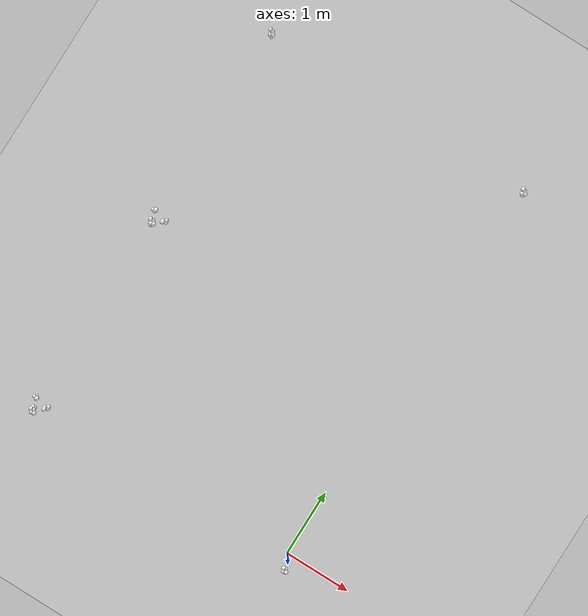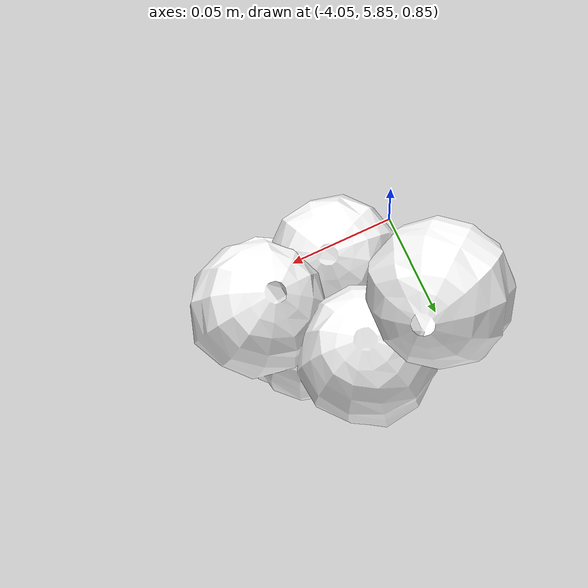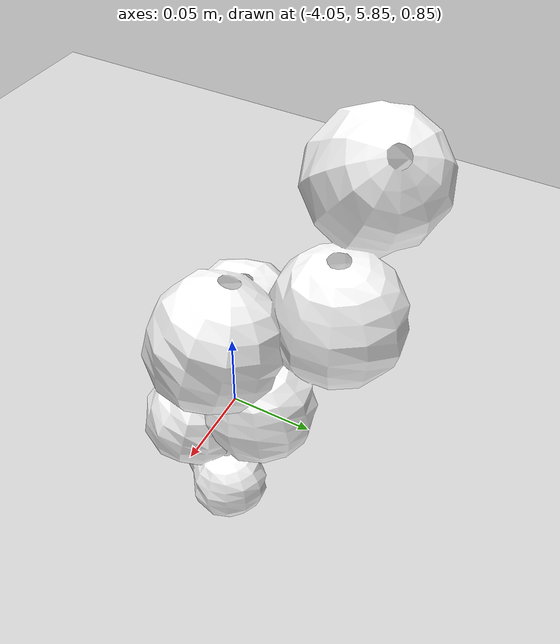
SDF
<sdf version="1.7">
 <world name="tomato_field">
  <physics name="1ms" type="ignored">
   <max_step_size>0.001</max_step_size>
   <real_time_factor>1</real_time_factor>
   <real_time_update_rate>1000</real_time_update_rate>
  </physics>
  <plugin name="ignition::gazebo::systems::Physics" filename="ignition-gazebo-physics-system"/>
  <plugin name="ignition::gazebo::systems::UserCommands" filename="ignition-gazebo-user-commands-system"/>
  <plugin name="ignition::gazebo::systems::SceneBroadcaster" filename="ignition-gazebo-scene-broadcaster-system"/>
  <scene><ambient>1 1 1 1</ambient><background>0.8 0.8 0.8 1</background><shadows>1</shadows></scene>
  <light name="sun" type="directional">
   <pose>0 0 10 0 -0 0</pose>
   <diffuse>0.8 0.8 0.8 1</diffuse>
   <specular>0.8 0.8 0.8 1</specular>
   <attenuation>
    <range>1000</range>
    <constant>0.9</constant>
    <linear>0.01</linear>
    <quadratic>0.001</quadratic>
   </attenuation>
   <direction>-0.5 0.1 -0.9</direction>
   <spot><inner_angle>0</inner_angle><outer_angle>0</outer_angle><falloff>0</falloff></spot>
  </light>
  <gravity>0 0 0</gravity>
  <magnetic_field>6e-06 2.3e-05 -4.2e-05</magnetic_field>
  <atmosphere type="adiabatic"/>
  <include><uri>ground</uri><name>ground</name><pose>5.0 5.0 0 0 0 0</pose></include>
  <include><uri>tomato_obfuscated</uri><name>tomato_obfuscated</name></include>
  <include><uri>tomato_0_few_fruits</uri><name>tomato_0_few_fruits</name><pose>0.0 6.0 0 0 0 0</pose></include>
  <include>
   <uri>tomato_obfuscated_truth</uri>
   <name>tomato_obfuscated_truth</name>
   <pose>-4.0 0.0 0 0 0 0</pose>
  </include>
  <include><uri>tomato_0_truth</uri><name>tomato_0_truth</name><pose>-4.0 3.0 0 0 0 0</pose></include>
  <include>
   <uri>tomato_0_few_fruits_truth</uri>
   <name>tomato_0_few_fruits_truth</name>
   <pose>-4.0 6.0 0 0 0 0</pose>
  </include>
 </world>
</sdf>

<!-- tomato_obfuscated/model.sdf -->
<sdf version="1.6">
  <model name="tomato_obfuscated">
    <static>true</static>
    <link name="link">
      <collision name="collision">
        <geometry>
          <box>
            <size>.1 .1 1</size>
          </box>
        </geometry>
      </collision>
      <visual name="branch">
        <geometry>
          <mesh>
            <uri>file://tomato_obfuscated/meshes/tomato.dae</uri>
            <submesh>
              <name>Branch1</name>
            </submesh>
          </mesh>
        </geometry>
        <material>
          <diffuse>1.0 1.0 1.0</diffuse>
          <pbr>
            <metal>
              <albedo_map>file://tomato_obfuscated/materials/textures/AG15brn1.png</albedo_map>
            </metal>
          </pbr>
        </material>
      </visual>
      <visual name="leaf1">
        <geometry>
          <mesh>
            <uri>file://tomato_obfuscated/meshes/tomato.dae</uri>
            <submesh>
              <name>Leaf1</name>
            </submesh>
          </mesh>
        </geometry>
        <material>
          <diffuse>1.0 1.0 1.0</diffuse>
          <pbr>
            <metal>
              <albedo_map>file://tomato_obfuscated/materials/textures/AG15lef1.png</albedo_map>
            </metal>
          </pbr>
        </material>
      </visual>
      <visual name="leaf2">
        <geometry>
          <mesh>
            <uri>file://tomato_obfuscated/meshes/tomato.dae</uri>
            <submesh>
              <name>Leaf2</name>
            </submesh>
          </mesh>
        </geometry>
        <material>
          <diffuse>1.0 1.0 1.0</diffuse>
          <pbr>
            <metal>
              <albedo_map>file://tomato_obfuscated/materials/textures/AG15lef2.png</albedo_map>
            </metal>
          </pbr>
        </material>
      </visual>
      <visual name="fruit1">
        <geometry>
          <mesh>
            <uri>file://tomato_obfuscated/meshes/tomato.dae</uri>
            <submesh>
              <name>Fruit1</name>
            </submesh>
          </mesh>
        </geometry>
        <material>
          <diffuse>1.0 1.0 1.0</diffuse>
          <pbr>
            <metal>
              <albedo_map>file://tomato_obfuscated/materials/textures/AG15frt1.png</albedo_map>
            </metal>
          </pbr>
        </material>
      </visual>
      <visual name="fruit2">
        <geometry>
          <mesh>
            <uri>file://tomato_obfuscated/meshes/tomato.dae</uri>
            <submesh>
              <name>Fruit2</name>
            </submesh>
          </mesh>
        </geometry>
        <material>
          <diffuse>1.0 1.0 1.0</diffuse>
          <pbr>
            <metal>
              <albedo_map>file://tomato_obfuscated/materials/textures/AG15frt2.png</albedo_map>
            </metal>
          </pbr>
        </material>
      </visual>
      <visual name="fruit3">
        <geometry>
          <mesh>
            <uri>file://tomato_obfuscated/meshes/tomato.dae</uri>
            <submesh>
              <name>Fruit3</name>
            </submesh>
          </mesh>
        </geometry>
        <material>
          <diffuse>1.0 1.0 1.0</diffuse>
          <pbr>
            <metal>
              <albedo_map>file://tomato_obfuscated/materials/textures/AG15frt3.png</albedo_map>
            </metal>
          </pbr>
        </material>
      </visual>
      <visual name="fruit4">
        <geometry>
          <mesh>
            <uri>file://tomato_obfuscated/meshes/tomato.dae</uri>
            <submesh>
              <name>Fruit4</name>
            </submesh>
          </mesh>
        </geometry>
        <material>
          <diffuse>1.0 1.0 1.0</diffuse>
          <pbr>
            <metal>
              <albedo_map>file://tomato_obfuscated/materials/textures/AG15frt4.png</albedo_map>
            </metal>
          </pbr>
        </material>
      </visual>
      <visual name="blossom1">
        <geometry>
          <mesh>
            <uri>file://tomato_obfuscated/meshes/tomato.dae</uri>
            <submesh>
              <name>Blossom1</name>
            </submesh>
          </mesh>
        </geometry>
        <material>
          <diffuse>1.0 1.0 1.0</diffuse>
          <pbr>
            <metal>
              <albedo_map>file://tomato_obfuscated/materials/textures/AG15blo1.png</albedo_map>
            </metal>
          </pbr>
        </material>
      </visual>
      <visual name="blossom2">
        <geometry>
          <mesh>
            <uri>file://tomato_obfuscated/meshes/tomato.dae</uri>
            <submesh>
              <name>Blossom2</name>
            </submesh>
          </mesh>
        </geometry>
        <material>
          <diffuse>1.0 1.0 1.0</diffuse>
          <pbr>
            <metal>
              <albedo_map>file://tomato_obfuscated/materials/textures/AG15blo2.png</albedo_map>
            </metal>
          </pbr>
        </material>
      </visual>
      <visual name="blossom3">
        <geometry>
          <mesh>
            <uri>file://tomato_obfuscated/meshes/tomato.dae</uri>
            <submesh>
              <name>Blossom3</name>
            </submesh>
          </mesh>
        </geometry>
        <material>
          <diffuse>1.0 1.0 1.0</diffuse>
          <pbr>
            <metal>
              <albedo_map>file://tomato_obfuscated/materials/textures/AG15blo3.png</albedo_map>
            </metal>
          </pbr>
        </material>
      </visual>
    </link>
  </model>
</sdf>

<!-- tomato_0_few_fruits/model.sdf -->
<sdf version="1.6">
  <model name="tomato_0_few_fruits">
    <static>true</static>
    <link name="link">
      <collision name="collision">
        <geometry>
          <box>
            <size>.1 .1 1</size>
          </box>
        </geometry>
      </collision>
      <visual name="branch">
        <geometry>
          <mesh>
            <uri>file://tomato_0_few_fruits/meshes/tomato.dae</uri>
            <submesh>
              <name>Branch1</name>
            </submesh>
          </mesh>
        </geometry>
        <material>
          <diffuse>1.0 1.0 1.0</diffuse>
          <pbr>
            <metal>
              <albedo_map>file://tomato_0_few_fruits/materials/textures/AG15brn1.png</albedo_map>
            </metal>
          </pbr>
        </material>
      </visual>
      <visual name="leaf1">
        <geometry>
          <mesh>
            <uri>file://tomato_0_few_fruits/meshes/tomato.dae</uri>
            <submesh>
              <name>Leaf1</name>
            </submesh>
          </mesh>
        </geometry>
        <material>
          <diffuse>1.0 1.0 1.0</diffuse>
          <pbr>
            <metal>
              <albedo_map>file://tomato_0_few_fruits/materials/textures/AG15lef1.png</albedo_map>
            </metal>
          </pbr>
        </material>
      </visual>
      <visual name="leaf2">
        <geometry>
          <mesh>
            <uri>file://tomato_0_few_fruits/meshes/tomato.dae</uri>
            <submesh>
              <name>Leaf2</name>
            </submesh>
          </mesh>
        </geometry>
        <material>
          <diffuse>1.0 1.0 1.0</diffuse>
          <pbr>
            <metal>
              <albedo_map>file://tomato_0_few_fruits/materials/textures/AG15lef2.png</albedo_map>
            </metal>
          </pbr>
        </material>
      </visual>
      <visual name="fruit1">
        <geometry>
          <mesh>
            <uri>file://tomato_0_few_fruits/meshes/tomato.dae</uri>
            <submesh>
              <name>Fruit1</name>
            </submesh>
          </mesh>
        </geometry>
        <material>
          <diffuse>1.0 1.0 1.0</diffuse>
          <pbr>
            <metal>
              <albedo_map>file://tomato_0_few_fruits/materials/textures/AG15frt1.png</albedo_map>
            </metal>
          </pbr>
        </material>
      </visual>
      <visual name="fruit2">
        <geometry>
          <mesh>
            <uri>file://tomato_0_few_fruits/meshes/tomato.dae</uri>
            <submesh>
              <name>Fruit2</name>
            </submesh>
          </mesh>
        </geometry>
        <material>
          <diffuse>1.0 1.0 1.0</diffuse>
          <pbr>
            <metal>
              <albedo_map>file://tomato_0_few_fruits/materials/textures/AG15frt2.png</albedo_map>
            </metal>
          </pbr>
        </material>
      </visual>
      <visual name="fruit3">
        <geometry>
          <mesh>
            <uri>file://tomato_0_few_fruits/meshes/tomato.dae</uri>
            <submesh>
              <name>Fruit3</name>
            </submesh>
          </mesh>
        </geometry>
        <material>
          <diffuse>1.0 1.0 1.0</diffuse>
          <pbr>
            <metal>
              <albedo_map>file://tomato_0_few_fruits/materials/textures/AG15frt3.png</albedo_map>
            </metal>
          </pbr>
        </material>
      </visual>
      <visual name="fruit4">
        <geometry>
          <mesh>
            <uri>file://tomato_0_few_fruits/meshes/tomato.dae</uri>
            <submesh>
              <name>Fruit4</name>
            </submesh>
          </mesh>
        </geometry>
        <material>
          <diffuse>1.0 1.0 1.0</diffuse>
          <pbr>
            <metal>
              <albedo_map>file://tomato_0_few_fruits/materials/textures/AG15frt4.png</albedo_map>
            </metal>
          </pbr>
        </material>
      </visual>
      <visual name="blossom1">
        <geometry>
          <mesh>
            <uri>file://tomato_0_few_fruits/meshes/tomato.dae</uri>
            <submesh>
              <name>Blossom1</name>
            </submesh>
          </mesh>
        </geometry>
        <material>
          <diffuse>1.0 1.0 1.0</diffuse>
          <pbr>
            <metal>
              <albedo_map>file://tomato_0_few_fruits/materials/textures/AG15blo1.png</albedo_map>
            </metal>
          </pbr>
        </material>
      </visual>
      <visual name="blossom2">
        <geometry>
          <mesh>
            <uri>file://tomato_0_few_fruits/meshes/tomato.dae</uri>
            <submesh>
              <name>Blossom2</name>
            </submesh>
          </mesh>
        </geometry>
        <material>
          <diffuse>1.0 1.0 1.0</diffuse>
          <pbr>
            <metal>
              <albedo_map>file://tomato_0_few_fruits/materials/textures/AG15blo2.png</albedo_map>
            </metal>
          </pbr>
        </material>
      </visual>
      <visual name="blossom3">
        <geometry>
          <mesh>
            <uri>file://tomato_0_few_fruits/meshes/tomato.dae</uri>
            <submesh>
              <name>Blossom3</name>
            </submesh>
          </mesh>
        </geometry>
        <material>
          <diffuse>1.0 1.0 1.0</diffuse>
          <pbr>
            <metal>
              <albedo_map>file://tomato_0_few_fruits/materials/textures/AG15blo3.png</albedo_map>
            </metal>
          </pbr>
        </material>
      </visual>
    </link>
  </model>
</sdf>

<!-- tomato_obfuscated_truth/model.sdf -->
<sdf version="1.6">
  <model name="tomato_obfuscated_truth">
    <static>true</static>
    <link name="link">
      <collision name="collision">
        <geometry>
          <box>
            <size>.1 .1 1</size>
          </box>
        </geometry>
      </collision>
      <visual name="branch">
        <geometry>
          <mesh>
            <uri>file://tomato_obfuscated_truth/meshes/tomato.dae</uri>
            <submesh>
              <name>Branch1</name>
            </submesh>
          </mesh>
        </geometry>
        <material>
          <diffuse>1.0 1.0 1.0</diffuse>
          <pbr>
            <metal>
              <albedo_map>file://tomato_obfuscated_truth/materials/textures/AG15brn1.png</albedo_map>
            </metal>
          </pbr>
        </material>
      </visual>
      <visual name="leaf1">
        <geometry>
          <mesh>
            <uri>file://tomato_obfuscated_truth/meshes/tomato.dae</uri>
            <submesh>
              <name>Leaf1</name>
            </submesh>
          </mesh>
        </geometry>
        <material>
          <diffuse>1.0 1.0 1.0</diffuse>
          <pbr>
            <metal>
              <albedo_map>file://tomato_obfuscated_truth/materials/textures/AG15lef1.png</albedo_map>
            </metal>
          </pbr>
        </material>
      </visual>
      <visual name="leaf2">
        <geometry>
          <mesh>
            <uri>file://tomato_obfuscated_truth/meshes/tomato.dae</uri>
            <submesh>
              <name>Leaf2</name>
            </submesh>
          </mesh>
        </geometry>
        <material>
          <diffuse>1.0 1.0 1.0</diffuse>
          <pbr>
            <metal>
              <albedo_map>file://tomato_obfuscated_truth/materials/textures/AG15lef2.png</albedo_map>
            </metal>
          </pbr>
        </material>
      </visual>
      <visual name="fruit1">
        <geometry>
          <mesh>
            <uri>file://tomato_obfuscated_truth/meshes/tomato.dae</uri>
            <submesh>
              <name>Fruit1</name>
            </submesh>
          </mesh>
        </geometry>
        <material>
          <diffuse>1.0 1.0 1.0</diffuse>
          <pbr>
            <metal>
              <albedo_map>file://tomato_obfuscated_truth/materials/textures/AG15frt1.png</albedo_map>
            </metal>
          </pbr>
        </material>
      </visual>
      <visual name="fruit2">
        <geometry>
          <mesh>
            <uri>file://tomato_obfuscated_truth/meshes/tomato.dae</uri>
            <submesh>
              <name>Fruit2</name>
            </submesh>
          </mesh>
        </geometry>
        <material>
          <diffuse>1.0 1.0 1.0</diffuse>
          <pbr>
            <metal>
              <albedo_map>file://tomato_obfuscated_truth/materials/textures/AG15frt2.png</albedo_map>
            </metal>
          </pbr>
        </material>
      </visual>
      <visual name="fruit3">
        <geometry>
          <mesh>
            <uri>file://tomato_obfuscated_truth/meshes/tomato.dae</uri>
            <submesh>
              <name>Fruit3</name>
            </submesh>
          </mesh>
        </geometry>
        <material>
          <diffuse>1.0 1.0 1.0</diffuse>
          <pbr>
            <metal>
              <albedo_map>file://tomato_obfuscated_truth/materials/textures/AG15frt3.png</albedo_map>
            </metal>
          </pbr>
        </material>
      </visual>
      <visual name="fruit4">
        <geometry>
          <mesh>
            <uri>file://tomato_obfuscated_truth/meshes/tomato.dae</uri>
            <submesh>
              <name>Fruit4</name>
            </submesh>
          </mesh>
        </geometry>
        <material>
          <diffuse>1.0 1.0 1.0</diffuse>
          <pbr>
            <metal>
              <albedo_map>file://tomato_obfuscated_truth/materials/textures/AG15frt4.png</albedo_map>
            </metal>
          </pbr>
        </material>
      </visual>
      <visual name="blossom1">
        <geometry>
          <mesh>
            <uri>file://tomato_obfuscated_truth/meshes/tomato.dae</uri>
            <submesh>
              <name>Blossom1</name>
            </submesh>
          </mesh>
        </geometry>
        <material>
          <diffuse>1.0 1.0 1.0</diffuse>
          <pbr>
            <metal>
              <albedo_map>file://tomato_obfuscated_truth/materials/textures/AG15blo1.png</albedo_map>
            </metal>
          </pbr>
        </material>
      </visual>
      <visual name="blossom2">
        <geometry>
          <mesh>
            <uri>file://tomato_obfuscated_truth/meshes/tomato.dae</uri>
            <submesh>
              <name>Blossom2</name>
            </submesh>
          </mesh>
        </geometry>
        <material>
          <diffuse>1.0 1.0 1.0</diffuse>
          <pbr>
            <metal>
              <albedo_map>file://tomato_obfuscated_truth/materials/textures/AG15blo2.png</albedo_map>
            </metal>
          </pbr>
        </material>
      </visual>
      <visual name="blossom3">
        <geometry>
          <mesh>
            <uri>file://tomato_obfuscated_truth/meshes/tomato.dae</uri>
            <submesh>
              <name>Blossom3</name>
            </submesh>
          </mesh>
        </geometry>
        <material>
          <diffuse>1.0 1.0 1.0</diffuse>
          <pbr>
            <metal>
              <albedo_map>file://tomato_obfuscated_truth/materials/textures/AG15blo3.png</albedo_map>
            </metal>
          </pbr>
        </material>
      </visual>
    </link>
  </model>
</sdf>

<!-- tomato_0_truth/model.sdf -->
<sdf version="1.6">
  <model name="tomato_0_truth">
    <static>true</static>
    <link name="link">
      <collision name="collision">
        <geometry>
          <box>
            <size>.1 .1 1</size>
          </box>
        </geometry>
      </collision>
      <visual name="branch">
        <geometry>
          <mesh>
            <uri>file://tomato_0_truth/meshes/tomato.dae</uri>
            <submesh>
              <name>Branch1</name>
            </submesh>
          </mesh>
        </geometry>
        <material>
          <diffuse>1.0 1.0 1.0</diffuse>
          <pbr>
            <metal>
              <albedo_map>file://tomato_0_truth/materials/textures/AG15brn1.png</albedo_map>
            </metal>
          </pbr>
        </material>
      </visual>
      <visual name="leaf1">
        <geometry>
          <mesh>
            <uri>file://tomato_0_truth/meshes/tomato.dae</uri>
            <submesh>
              <name>Leaf1</name>
            </submesh>
          </mesh>
        </geometry>
        <material>
          <diffuse>1.0 1.0 1.0</diffuse>
          <pbr>
            <metal>
              <albedo_map>file://tomato_0_truth/materials/textures/AG15lef1.png</albedo_map>
            </metal>
          </pbr>
        </material>
      </visual>
      <visual name="leaf2">
        <geometry>
          <mesh>
            <uri>file://tomato_0_truth/meshes/tomato.dae</uri>
            <submesh>
              <name>Leaf2</name>
            </submesh>
          </mesh>
        </geometry>
        <material>
          <diffuse>1.0 1.0 1.0</diffuse>
          <pbr>
            <metal>
              <albedo_map>file://tomato_0_truth/materials/textures/AG15lef2.png</albedo_map>
            </metal>
          </pbr>
        </material>
      </visual>
      <visual name="fruit1">
        <geometry>
          <mesh>
            <uri>file://tomato_0_truth/meshes/tomato.dae</uri>
            <submesh>
              <name>Fruit1</name>
            </submesh>
          </mesh>
        </geometry>
        <material>
          <diffuse>1.0 1.0 1.0</diffuse>
          <pbr>
            <metal>
              <albedo_map>file://tomato_0_truth/materials/textures/AG15frt1.png</albedo_map>
            </metal>
          </pbr>
        </material>
      </visual>
      <visual name="fruit2">
        <geometry>
          <mesh>
            <uri>file://tomato_0_truth/meshes/tomato.dae</uri>
            <submesh>
              <name>Fruit2</name>
            </submesh>
          </mesh>
        </geometry>
        <material>
          <diffuse>1.0 1.0 1.0</diffuse>
          <pbr>
            <metal>
              <albedo_map>file://tomato_0_truth/materials/textures/AG15frt2.png</albedo_map>
            </metal>
          </pbr>
        </material>
      </visual>
      <visual name="fruit3">
        <geometry>
          <mesh>
            <uri>file://tomato_0_truth/meshes/tomato.dae</uri>
            <submesh>
              <name>Fruit3</name>
            </submesh>
          </mesh>
        </geometry>
        <material>
          <diffuse>1.0 1.0 1.0</diffuse>
          <pbr>
            <metal>
              <albedo_map>file://tomato_0_truth/materials/textures/AG15frt3.png</albedo_map>
            </metal>
          </pbr>
        </material>
      </visual>
      <visual name="fruit4">
        <geometry>
          <mesh>
            <uri>file://tomato_0_truth/meshes/tomato.dae</uri>
            <submesh>
              <name>Fruit4</name>
            </submesh>
          </mesh>
        </geometry>
        <material>
          <diffuse>1.0 1.0 1.0</diffuse>
          <pbr>
            <metal>
              <albedo_map>file://tomato_0_truth/materials/textures/AG15frt4.png</albedo_map>
            </metal>
          </pbr>
        </material>
      </visual>
      <visual name="blossom1">
        <geometry>
          <mesh>
            <uri>file://tomato_0_truth/meshes/tomato.dae</uri>
            <submesh>
              <name>Blossom1</name>
            </submesh>
          </mesh>
        </geometry>
        <material>
          <diffuse>1.0 1.0 1.0</diffuse>
          <pbr>
            <metal>
              <albedo_map>file://tomato_0_truth/materials/textures/AG15blo1.png</albedo_map>
            </metal>
          </pbr>
        </material>
      </visual>
      <visual name="blossom2">
        <geometry>
          <mesh>
            <uri>file://tomato_0_truth/meshes/tomato.dae</uri>
            <submesh>
              <name>Blossom2</name>
            </submesh>
          </mesh>
        </geometry>
        <material>
          <diffuse>1.0 1.0 1.0</diffuse>
          <pbr>
            <metal>
              <albedo_map>file://tomato_0_truth/materials/textures/AG15blo2.png</albedo_map>
            </metal>
          </pbr>
        </material>
      </visual>
      <visual name="blossom3">
        <geometry>
          <mesh>
            <uri>file://tomato_0_truth/meshes/tomato.dae</uri>
            <submesh>
              <name>Blossom3</name>
            </submesh>
          </mesh>
        </geometry>
        <material>
          <diffuse>1.0 1.0 1.0</diffuse>
          <pbr>
            <metal>
              <albedo_map>file://tomato_0_truth/materials/textures/AG15blo3.png</albedo_map>
            </metal>
          </pbr>
        </material>
      </visual>
    </link>
  </model>
</sdf>

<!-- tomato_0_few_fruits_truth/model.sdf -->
<sdf version="1.6">
  <model name="tomato_0_few_fruits_truth">
    <static>true</static>
    <link name="link">
      <collision name="collision">
        <geometry>
          <box>
            <size>.1 .1 1</size>
          </box>
        </geometry>
      </collision>
      <visual name="branch">
        <geometry>
          <mesh>
            <uri>file://tomato_0_few_fruits_truth/meshes/tomato.dae</uri>
            <submesh>
              <name>Branch1</name>
            </submesh>
          </mesh>
        </geometry>
        <material>
          <diffuse>1.0 1.0 1.0</diffuse>
          <pbr>
            <metal>
              <albedo_map>file://tomato_0_few_fruits_truth/materials/textures/AG15brn1.png</albedo_map>
            </metal>
          </pbr>
        </material>
      </visual>
      <visual name="leaf1">
        <geometry>
          <mesh>
            <uri>file://tomato_0_few_fruits_truth/meshes/tomato.dae</uri>
            <submesh>
              <name>Leaf1</name>
            </submesh>
          </mesh>
        </geometry>
        <material>
          <diffuse>1.0 1.0 1.0</diffuse>
          <pbr>
            <metal>
              <albedo_map>file://tomato_0_few_fruits_truth/materials/textures/AG15lef1.png</albedo_map>
            </metal>
          </pbr>
        </material>
      </visual>
      <visual name="leaf2">
        <geometry>
          <mesh>
            <uri>file://tomato_0_few_fruits_truth/meshes/tomato.dae</uri>
            <submesh>
              <name>Leaf2</name>
            </submesh>
          </mesh>
        </geometry>
        <material>
          <diffuse>1.0 1.0 1.0</diffuse>
          <pbr>
            <metal>
              <albedo_map>file://tomato_0_few_fruits_truth/materials/textures/AG15lef2.png</albedo_map>
            </metal>
          </pbr>
        </material>
      </visual>
      <visual name="fruit1">
        <geometry>
          <mesh>
            <uri>file://tomato_0_few_fruits_truth/meshes/tomato.dae</uri>
            <submesh>
              <name>Fruit1</name>
            </submesh>
          </mesh>
        </geometry>
        <material>
          <diffuse>1.0 1.0 1.0</diffuse>
          <pbr>
            <metal>
              <albedo_map>file://tomato_0_few_fruits_truth/materials/textures/AG15frt1.png</albedo_map>
            </metal>
          </pbr>
        </material>
      </visual>
      <visual name="fruit2">
        <geometry>
          <mesh>
            <uri>file://tomato_0_few_fruits_truth/meshes/tomato.dae</uri>
            <submesh>
              <name>Fruit2</name>
            </submesh>
          </mesh>
        </geometry>
        <material>
          <diffuse>1.0 1.0 1.0</diffuse>
          <pbr>
            <metal>
              <albedo_map>file://tomato_0_few_fruits_truth/materials/textures/AG15frt2.png</albedo_map>
            </metal>
          </pbr>
        </material>
      </visual>
      <visual name="fruit3">
        <geometry>
          <mesh>
            <uri>file://tomato_0_few_fruits_truth/meshes/tomato.dae</uri>
            <submesh>
              <name>Fruit3</name>
            </submesh>
          </mesh>
        </geometry>
        <material>
          <diffuse>1.0 1.0 1.0</diffuse>
          <pbr>
            <metal>
              <albedo_map>file://tomato_0_few_fruits_truth/materials/textures/AG15frt3.png</albedo_map>
            </metal>
          </pbr>
        </material>
      </visual>
      <visual name="fruit4">
        <geometry>
          <mesh>
            <uri>file://tomato_0_few_fruits_truth/meshes/tomato.dae</uri>
            <submesh>
              <name>Fruit4</name>
            </submesh>
          </mesh>
        </geometry>
        <material>
          <diffuse>1.0 1.0 1.0</diffuse>
          <pbr>
            <metal>
              <albedo_map>file://tomato_0_few_fruits_truth/materials/textures/AG15frt4.png</albedo_map>
            </metal>
          </pbr>
        </material>
      </visual>
      <visual name="blossom1">
        <geometry>
          <mesh>
            <uri>file://tomato_0_few_fruits_truth/meshes/tomato.dae</uri>
            <submesh>
              <name>Blossom1</name>
            </submesh>
          </mesh>
        </geometry>
        <material>
          <diffuse>1.0 1.0 1.0</diffuse>
          <pbr>
            <metal>
              <albedo_map>file://tomato_0_few_fruits_truth/materials/textures/AG15blo1.png</albedo_map>
            </metal>
          </pbr>
        </material>
      </visual>
      <visual name="blossom2">
        <geometry>
          <mesh>
            <uri>file://tomato_0_few_fruits_truth/meshes/tomato.dae</uri>
            <submesh>
              <name>Blossom2</name>
            </submesh>
          </mesh>
        </geometry>
        <material>
          <diffuse>1.0 1.0 1.0</diffuse>
          <pbr>
            <metal>
              <albedo_map>file://tomato_0_few_fruits_truth/materials/textures/AG15blo2.png</albedo_map>
            </metal>
          </pbr>
        </material>
      </visual>
      <visual name="blossom3">
        <geometry>
          <mesh>
            <uri>file://tomato_0_few_fruits_truth/meshes/tomato.dae</uri>
            <submesh>
              <name>Blossom3</name>
            </submesh>
          </mesh>
        </geometry>
        <material>
          <diffuse>1.0 1.0 1.0</diffuse>
          <pbr>
            <metal>
              <albedo_map>file://tomato_0_few_fruits_truth/materials/textures/AG15blo3.png</albedo_map>
            </metal>
          </pbr>
        </material>
      </visual>
    </link>
  </model>
</sdf>
